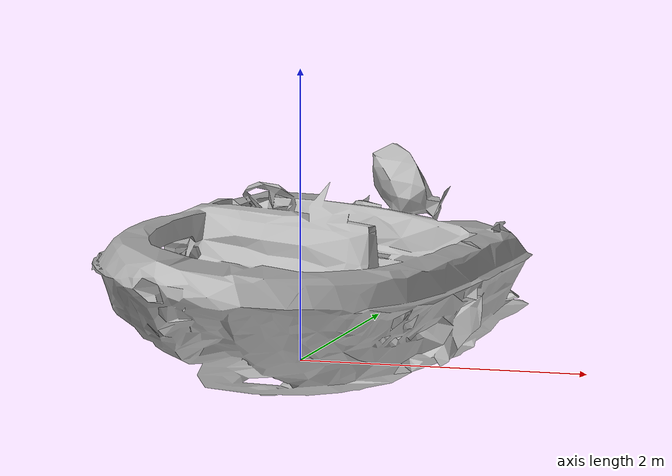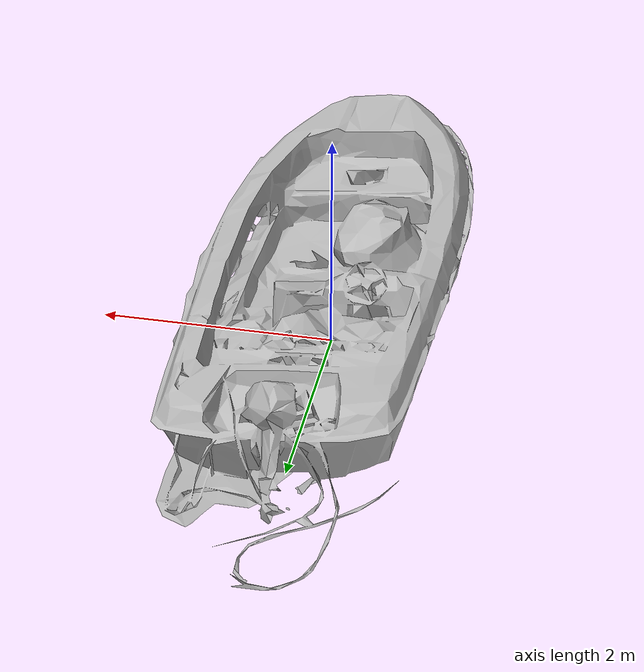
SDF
<?xml version="1.0"?>
<sdf version="1.9">
  <model name="boat">
    <static>true</static>
    <link name="link">
      <visual name="visual">
        <!-- Source OBJ is Y-up; rotate it into Gazebo's Z-up frame. -->
        <pose>0 0 0 1.57079632679 0 0</pose>
        <geometry>
          <mesh>
            <uri>model://cmra_models/boat/boat.obj</uri>
            <scale>0.1 0.1 0.1</scale>
          </mesh>
        </geometry>
      </visual>
    </link>
  </model>
</sdf>
